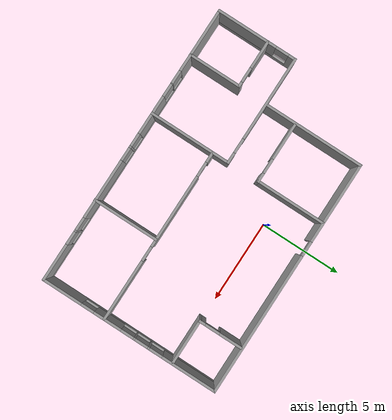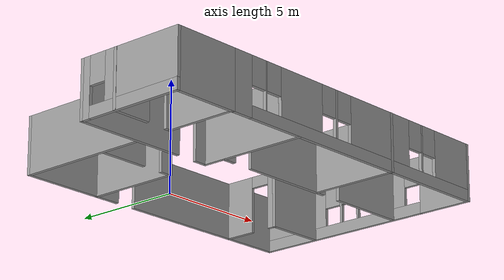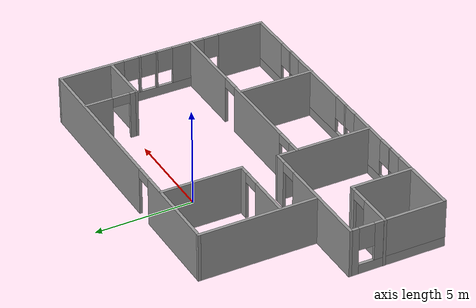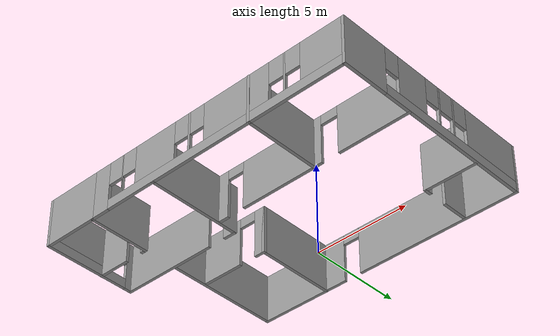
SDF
<?xml version='1.0'?>
<sdf version='1.7'>
  <model name='Room'>
    <pose>0.319548 -2.97161 0 0 -0 0</pose>
    <link name='Wall_11'>
      <collision name='Wall_11_Collision'>
        <geometry>
          <box>
            <size>5 0.15 2.5</size>
          </box>
        </geometry>
        <pose>0 0 1.25 0 -0 0</pose>
      </collision>
      <visual name='Wall_11_Visual'>
        <pose>0 0 1.25 0 -0 0</pose>
        <geometry>
          <box>
            <size>5 0.15 2.5</size>
          </box>
        </geometry>
        <material>
          <script>
            <uri>file://media/materials/scripts/gazebo.material</uri>
            <name>Gazebo/Grey</name>
          </script>
          <ambient>1 1 1 1</ambient>
        </material>
        <meta>
          <layer>0</layer>
        </meta>
      </visual>
      <pose>-1.99184 -3.00871 0 0 -0 -1.5708</pose>
    </link>
    <link name='Wall_13'>
      <pose>-3.82836 1.32044 0 0 -0 -3.14159</pose>
      <visual name='Wall_13_Visual_0'>
        <pose>-1.56629 0 1.25 0 -0 0</pose>
        <geometry>
          <box>
            <size>0.594484 0.15 2.5</size>
          </box>
        </geometry>
        <material>
          <script>
            <uri>file://media/materials/scripts/gazebo.material</uri>
            <name>Gazebo/Grey</name>
          </script>
          <ambient>1 1 1 1</ambient>
        </material>
        <meta>
          <layer>0</layer>
        </meta>
      </visual>
      <collision name='Wall_13_Collision_0'>
        <geometry>
          <box>
            <size>0.594484 0.15 2.5</size>
          </box>
        </geometry>
        <pose>-1.56629 0 1.25 0 -0 0</pose>
      </collision>
      <visual name='Wall_13_Visual_1'>
        <pose>0.747242 0 1.25 0 -0 0</pose>
        <geometry>
          <box>
            <size>2.23259 0.15 2.5</size>
          </box>
        </geometry>
        <material>
          <script>
            <uri>file://media/materials/scripts/gazebo.material</uri>
            <name>Gazebo/Grey</name>
          </script>
          <ambient>1 1 1 1</ambient>
        </material>
        <meta>
          <layer>0</layer>
        </meta>
      </visual>
      <collision name='Wall_13_Collision_1'>
        <geometry>
          <box>
            <size>2.23259 0.15 2.5</size>
          </box>
        </geometry>
        <pose>0.747242 0 1.25 0 -0 0</pose>
      </collision>
      <visual name='Wall_13_Visual_2'>
        <pose>-0.819053 0 2.25 0 -0 0</pose>
        <geometry>
          <box>
            <size>0.9 0.15 0.5</size>
          </box>
        </geometry>
        <material>
          <script>
            <uri>file://media/materials/scripts/gazebo.material</uri>
            <name>Gazebo/Grey</name>
          </script>
          <ambient>1 1 1 1</ambient>
        </material>
        <meta>
          <layer>0</layer>
        </meta>
      </visual>
      <collision name='Wall_13_Collision_2'>
        <geometry>
          <box>
            <size>0.9 0.15 0.5</size>
          </box>
        </geometry>
        <pose>-0.819053 0 2.25 0 -0 0</pose>
      </collision>
    </link>
    <link name='Wall_16'>
      <pose>-8.61053 -3.01132 0 0 -0 -1.5708</pose>
      <visual name='Wall_16_Visual_0'>
        <pose>-2.2551 0 1.25 0 -0 0</pose>
        <geometry>
          <box>
            <size>0.489807 0.15 2.5</size>
          </box>
        </geometry>
        <material>
          <script>
            <uri>file://media/materials/scripts/gazebo.material</uri>
            <name>Gazebo/Grey</name>
          </script>
          <ambient>1 1 1 1</ambient>
        </material>
        <meta>
          <layer>0</layer>
        </meta>
      </visual>
      <collision name='Wall_16_Collision_0'>
        <geometry>
          <box>
            <size>0.489807 0.15 2.5</size>
          </box>
        </geometry>
        <pose>-2.2551 0 1.25 0 -0 0</pose>
      </collision>
      <visual name='Wall_16_Visual_1'>
        <pose>0.244904 0 0.25 0 -0 0</pose>
        <geometry>
          <box>
            <size>4.51019 0.15 0.5</size>
          </box>
        </geometry>
        <material>
          <script>
            <uri>file://media/materials/scripts/gazebo.material</uri>
            <name>Gazebo/Grey</name>
          </script>
          <ambient>1 1 1 1</ambient>
        </material>
        <meta>
          <layer>0</layer>
        </meta>
      </visual>
      <collision name='Wall_16_Collision_1'>
        <geometry>
          <box>
            <size>4.51019 0.15 0.5</size>
          </box>
        </geometry>
        <pose>0.244904 0 0.25 0 -0 0</pose>
      </collision>
      <visual name='Wall_16_Visual_2'>
        <pose>0.644904 0 1.5 0 -0 0</pose>
        <geometry>
          <box>
            <size>3.71019 0.15 2</size>
          </box>
        </geometry>
        <material>
          <script>
            <uri>file://media/materials/scripts/gazebo.material</uri>
            <name>Gazebo/Grey</name>
          </script>
          <ambient>1 1 1 1</ambient>
        </material>
        <meta>
          <layer>0</layer>
        </meta>
      </visual>
      <collision name='Wall_16_Collision_2'>
        <geometry>
          <box>
            <size>3.71019 0.15 2</size>
          </box>
        </geometry>
        <pose>0.644904 0 1.5 0 -0 0</pose>
      </collision>
      <visual name='Wall_16_Visual_3'>
        <pose>-1.61019 0 1.9 0 -0 0</pose>
        <geometry>
          <box>
            <size>0.8 0.15 1.2</size>
          </box>
        </geometry>
        <material>
          <script>
            <uri>file://media/materials/scripts/gazebo.material</uri>
            <name>Gazebo/Grey</name>
          </script>
          <ambient>1 1 1 1</ambient>
        </material>
        <meta>
          <layer>0</layer>
        </meta>
      </visual>
      <collision name='Wall_16_Collision_3'>
        <geometry>
          <box>
            <size>0.8 0.15 1.2</size>
          </box>
        </geometry>
        <pose>-1.61019 0 1.9 0 -0 0</pose>
      </collision>
    </link>
    <link name='Wall_19'>
      <collision name='Wall_19_Collision'>
        <geometry>
          <box>
            <size>3 0.15 2.5</size>
          </box>
        </geometry>
        <pose>0 0 1.25 0 -0 0</pose>
      </collision>
      <visual name='Wall_19_Visual'>
        <pose>0 0 1.25 0 -0 0</pose>
        <geometry>
          <box>
            <size>3 0.15 2.5</size>
          </box>
        </geometry>
        <material>
          <script>
            <uri>file://media/materials/scripts/gazebo.material</uri>
            <name>Gazebo/Grey</name>
          </script>
          <ambient>1 1 1 1</ambient>
        </material>
        <meta>
          <layer>0</layer>
        </meta>
      </visual>
      <pose>-7.15341 -5.43584 0 0 -0 3.14159</pose>
    </link>
    <link name='Wall_2'>
      <pose>1.44511 -5.43584 0 0 -0 0</pose>
      <visual name='Wall_2_Visual_0'>
        <pose>-6.71537 0 1.25 0 -0 0</pose>
        <geometry>
          <box>
            <size>1.0663 0.15 2.5</size>
          </box>
        </geometry>
        <material>
          <script>
            <uri>file://media/materials/scripts/gazebo.material</uri>
            <name>Gazebo/Grey</name>
          </script>
          <ambient>1 1 1 1</ambient>
        </material>
        <meta>
          <layer>0</layer>
        </meta>
      </visual>
      <collision name='Wall_2_Collision_0'>
        <geometry>
          <box>
            <size>1.0663 0.15 2.5</size>
          </box>
        </geometry>
        <pose>-6.71537 0 1.25 0 -0 0</pose>
      </collision>
      <visual name='Wall_2_Visual_1'>
        <pose>0.53315 0 0.25 0 -0 0</pose>
        <geometry>
          <box>
            <size>13.4307 0.15 0.5</size>
          </box>
        </geometry>
        <material>
          <script>
            <uri>file://media/materials/scripts/gazebo.material</uri>
            <name>Gazebo/Grey</name>
          </script>
          <ambient>1 1 1 1</ambient>
        </material>
        <meta>
          <layer>0</layer>
        </meta>
      </visual>
      <collision name='Wall_2_Collision_1'>
        <geometry>
          <box>
            <size>13.4307 0.15 0.5</size>
          </box>
        </geometry>
        <pose>0.53315 0 0.25 0 -0 0</pose>
      </collision>
      <visual name='Wall_2_Visual_2'>
        <pose>-5.35754 0 1.5 0 -0 0</pose>
        <geometry>
          <box>
            <size>0.049355 0.15 2</size>
          </box>
        </geometry>
        <material>
          <script>
            <uri>file://media/materials/scripts/gazebo.material</uri>
            <name>Gazebo/Grey</name>
          </script>
          <ambient>1 1 1 1</ambient>
        </material>
        <meta>
          <layer>0</layer>
        </meta>
      </visual>
      <collision name='Wall_2_Collision_2'>
        <geometry>
          <box>
            <size>0.049355 0.15 2</size>
          </box>
        </geometry>
        <pose>-5.35754 0 1.5 0 -0 0</pose>
      </collision>
      <visual name='Wall_2_Visual_3'>
        <pose>-3.34008 0 1.5 0 -0 0</pose>
        <geometry>
          <box>
            <size>2.38558 0.15 2</size>
          </box>
        </geometry>
        <material>
          <script>
            <uri>file://media/materials/scripts/gazebo.material</uri>
            <name>Gazebo/Grey</name>
          </script>
          <ambient>1 1 1 1</ambient>
        </material>
        <meta>
          <layer>0</layer>
        </meta>
      </visual>
      <collision name='Wall_2_Collision_3'>
        <geometry>
          <box>
            <size>2.38558 0.15 2</size>
          </box>
        </geometry>
        <pose>-3.34008 0 1.5 0 -0 0</pose>
      </collision>
      <visual name='Wall_2_Visual_4'>
        <pose>-1.28728 0 1.5 0 -0 0</pose>
        <geometry>
          <box>
            <size>0.12 0.15 2</size>
          </box>
        </geometry>
        <material>
          <script>
            <uri>file://media/materials/scripts/gazebo.material</uri>
            <name>Gazebo/Grey</name>
          </script>
          <ambient>1 1 1 1</ambient>
        </material>
        <meta>
          <layer>0</layer>
        </meta>
      </visual>
      <collision name='Wall_2_Collision_4'>
        <geometry>
          <box>
            <size>0.12 0.15 2</size>
          </box>
        </geometry>
        <pose>-1.28728 0 1.5 0 -0 0</pose>
      </collision>
      <visual name='Wall_2_Visual_5'>
        <pose>1.40372 0 1.5 0 -0 0</pose>
        <geometry>
          <box>
            <size>3.662 0.15 2</size>
          </box>
        </geometry>
        <material>
          <script>
            <uri>file://media/materials/scripts/gazebo.material</uri>
            <name>Gazebo/Grey</name>
          </script>
          <ambient>1 1 1 1</ambient>
        </material>
        <meta>
          <layer>0</layer>
        </meta>
      </visual>
      <collision name='Wall_2_Collision_5'>
        <geometry>
          <box>
            <size>3.662 0.15 2</size>
          </box>
        </geometry>
        <pose>1.40372 0 1.5 0 -0 0</pose>
      </collision>
      <visual name='Wall_2_Visual_6'>
        <pose>4.08322 0 1.5 0 -0 0</pose>
        <geometry>
          <box>
            <size>0.097 0.15 2</size>
          </box>
        </geometry>
        <material>
          <script>
            <uri>file://media/materials/scripts/gazebo.material</uri>
            <name>Gazebo/Grey</name>
          </script>
          <ambient>1 1 1 1</ambient>
        </material>
        <meta>
          <layer>0</layer>
        </meta>
      </visual>
      <collision name='Wall_2_Collision_6'>
        <geometry>
          <box>
            <size>0.097 0.15 2</size>
          </box>
        </geometry>
        <pose>4.08322 0 1.5 0 -0 0</pose>
      </collision>
      <visual name='Wall_2_Visual_7'>
        <pose>6.09012 0 1.5 0 -0 0</pose>
        <geometry>
          <box>
            <size>2.31681 0.15 2</size>
          </box>
        </geometry>
        <material>
          <script>
            <uri>file://media/materials/scripts/gazebo.material</uri>
            <name>Gazebo/Grey</name>
          </script>
          <ambient>1 1 1 1</ambient>
        </material>
        <meta>
          <layer>0</layer>
        </meta>
      </visual>
      <collision name='Wall_2_Collision_7'>
        <geometry>
          <box>
            <size>2.31681 0.15 2</size>
          </box>
        </geometry>
        <pose>6.09012 0 1.5 0 -0 0</pose>
      </collision>
      <visual name='Wall_2_Visual_8'>
        <pose>-5.78222 0 1.9 0 -0 0</pose>
        <geometry>
          <box>
            <size>0.8 0.15 1.2</size>
          </box>
        </geometry>
        <material>
          <script>
            <uri>file://media/materials/scripts/gazebo.material</uri>
            <name>Gazebo/Grey</name>
          </script>
          <ambient>1 1 1 1</ambient>
        </material>
        <meta>
          <layer>0</layer>
        </meta>
      </visual>
      <collision name='Wall_2_Collision_8'>
        <geometry>
          <box>
            <size>0.8 0.15 1.2</size>
          </box>
        </geometry>
        <pose>-5.78222 0 1.9 0 -0 0</pose>
      </collision>
      <visual name='Wall_2_Visual_9'>
        <pose>-4.93286 0 1.9 0 -0 0</pose>
        <geometry>
          <box>
            <size>0.8 0.15 1.2</size>
          </box>
        </geometry>
        <material>
          <script>
            <uri>file://media/materials/scripts/gazebo.material</uri>
            <name>Gazebo/Grey</name>
          </script>
          <ambient>1 1 1 1</ambient>
        </material>
        <meta>
          <layer>0</layer>
        </meta>
      </visual>
      <collision name='Wall_2_Collision_9'>
        <geometry>
          <box>
            <size>0.8 0.15 1.2</size>
          </box>
        </geometry>
        <pose>-4.93286 0 1.9 0 -0 0</pose>
      </collision>
      <visual name='Wall_2_Visual_10'>
        <pose>-1.74728 0 1.9 0 -0 0</pose>
        <geometry>
          <box>
            <size>0.8 0.15 1.2</size>
          </box>
        </geometry>
        <material>
          <script>
            <uri>file://media/materials/scripts/gazebo.material</uri>
            <name>Gazebo/Grey</name>
          </script>
          <ambient>1 1 1 1</ambient>
        </material>
        <meta>
          <layer>0</layer>
        </meta>
      </visual>
      <collision name='Wall_2_Collision_10'>
        <geometry>
          <box>
            <size>0.8 0.15 1.2</size>
          </box>
        </geometry>
        <pose>-1.74728 0 1.9 0 -0 0</pose>
      </collision>
      <visual name='Wall_2_Visual_11'>
        <pose>-0.827284 0 1.9 0 -0 0</pose>
        <geometry>
          <box>
            <size>0.8 0.15 1.2</size>
          </box>
        </geometry>
        <material>
          <script>
            <uri>file://media/materials/scripts/gazebo.material</uri>
            <name>Gazebo/Grey</name>
          </script>
          <ambient>1 1 1 1</ambient>
        </material>
        <meta>
          <layer>0</layer>
        </meta>
      </visual>
      <collision name='Wall_2_Collision_11'>
        <geometry>
          <box>
            <size>0.8 0.15 1.2</size>
          </box>
        </geometry>
        <pose>-0.827284 0 1.9 0 -0 0</pose>
      </collision>
      <visual name='Wall_2_Visual_12'>
        <pose>3.63472 0 1.9 0 -0 0</pose>
        <geometry>
          <box>
            <size>0.8 0.15 1.2</size>
          </box>
        </geometry>
        <material>
          <script>
            <uri>file://media/materials/scripts/gazebo.material</uri>
            <name>Gazebo/Grey</name>
          </script>
          <ambient>1 1 1 1</ambient>
        </material>
        <meta>
          <layer>0</layer>
        </meta>
      </visual>
      <collision name='Wall_2_Collision_12'>
        <geometry>
          <box>
            <size>0.8 0.15 1.2</size>
          </box>
        </geometry>
        <pose>3.63472 0 1.9 0 -0 0</pose>
      </collision>
      <visual name='Wall_2_Visual_13'>
        <pose>4.53172 0 1.9 0 -0 0</pose>
        <geometry>
          <box>
            <size>0.8 0.15 1.2</size>
          </box>
        </geometry>
        <material>
          <script>
            <uri>file://media/materials/scripts/gazebo.material</uri>
            <name>Gazebo/Grey</name>
          </script>
          <ambient>1 1 1 1</ambient>
        </material>
        <meta>
          <layer>0</layer>
        </meta>
      </visual>
      <collision name='Wall_2_Collision_13'>
        <geometry>
          <box>
            <size>0.8 0.15 1.2</size>
          </box>
        </geometry>
        <pose>4.53172 0 1.9 0 -0 0</pose>
      </collision>
    </link>
    <link name='Wall_22'>
      <pose>-5.31053 -0.586315 0 0 -0 0</pose>
      <visual name='Wall_22_Visual_0'>
        <pose>-0.787931 0 1.25 0 -0 0</pose>
        <geometry>
          <box>
            <size>5.17414 0.15 2.5</size>
          </box>
        </geometry>
        <material>
          <script>
            <uri>file://media/materials/scripts/gazebo.material</uri>
            <name>Gazebo/Grey</name>
          </script>
          <ambient>1 1 1 1</ambient>
        </material>
        <meta>
          <layer>0</layer>
        </meta>
      </visual>
      <collision name='Wall_22_Collision_0'>
        <geometry>
          <box>
            <size>5.17414 0.15 2.5</size>
          </box>
        </geometry>
        <pose>-0.787931 0 1.25 0 -0 0</pose>
      </collision>
      <visual name='Wall_22_Visual_1'>
        <pose>3.03707 0 1.25 0 -0 0</pose>
        <geometry>
          <box>
            <size>0.675863 0.15 2.5</size>
          </box>
        </geometry>
        <material>
          <script>
            <uri>file://media/materials/scripts/gazebo.material</uri>
            <name>Gazebo/Grey</name>
          </script>
          <ambient>1 1 1 1</ambient>
        </material>
        <meta>
          <layer>0</layer>
        </meta>
      </visual>
      <collision name='Wall_22_Collision_1'>
        <geometry>
          <box>
            <size>0.675863 0.15 2.5</size>
          </box>
        </geometry>
        <pose>3.03707 0 1.25 0 -0 0</pose>
      </collision>
      <visual name='Wall_22_Visual_2'>
        <pose>2.24914 0 2.25 0 -0 0</pose>
        <geometry>
          <box>
            <size>0.9 0.15 0.5</size>
          </box>
        </geometry>
        <material>
          <script>
            <uri>file://media/materials/scripts/gazebo.material</uri>
            <name>Gazebo/Grey</name>
          </script>
          <ambient>1 1 1 1</ambient>
        </material>
        <meta>
          <layer>0</layer>
        </meta>
      </visual>
      <collision name='Wall_22_Collision_2'>
        <geometry>
          <box>
            <size>0.9 0.15 0.5</size>
          </box>
        </geometry>
        <pose>2.24914 0 2.25 0 -0 0</pose>
      </collision>
    </link>
    <link name='Wall_26'>
      <collision name='Wall_26_Collision'>
        <geometry>
          <box>
            <size>6.03591 0.15 2.5</size>
          </box>
        </geometry>
        <pose>0 0 1.25 0 -0 0</pose>
      </collision>
      <visual name='Wall_26_Visual'>
        <pose>0 0 1.25 0 -0 0</pose>
        <geometry>
          <box>
            <size>6.03591 0.15 2.5</size>
          </box>
        </geometry>
        <material>
          <script>
            <uri>file://media/materials/scripts/gazebo.material</uri>
            <name>Gazebo/Grey</name>
          </script>
          <ambient>1 1 1 1</ambient>
        </material>
        <meta>
          <layer>0</layer>
        </meta>
      </visual>
      <pose>-5.73137 2.50709 0 0 -0 -1.5708</pose>
    </link>
    <link name='Wall_28'>
      <pose>3.31307 -1.56727 0 0 -0 0</pose>
      <visual name='Wall_28_Visual_0'>
        <pose>-5.02986 0 1.25 0 -0 0</pose>
        <geometry>
          <box>
            <size>0.690281 0.15 2.5</size>
          </box>
        </geometry>
        <material>
          <script>
            <uri>file://media/materials/scripts/gazebo.material</uri>
            <name>Gazebo/Grey</name>
          </script>
          <ambient>1 1 1 1</ambient>
        </material>
        <meta>
          <layer>0</layer>
        </meta>
      </visual>
      <collision name='Wall_28_Collision_0'>
        <geometry>
          <box>
            <size>0.690281 0.15 2.5</size>
          </box>
        </geometry>
        <pose>-5.02986 0 1.25 0 -0 0</pose>
      </collision>
      <visual name='Wall_28_Visual_1'>
        <pose>-1.5395 0 1.25 0 -0 0</pose>
        <geometry>
          <box>
            <size>4.49044 0.15 2.5</size>
          </box>
        </geometry>
        <material>
          <script>
            <uri>file://media/materials/scripts/gazebo.material</uri>
            <name>Gazebo/Grey</name>
          </script>
          <ambient>1 1 1 1</ambient>
        </material>
        <meta>
          <layer>0</layer>
        </meta>
      </visual>
      <collision name='Wall_28_Collision_1'>
        <geometry>
          <box>
            <size>4.49044 0.15 2.5</size>
          </box>
        </geometry>
        <pose>-1.5395 0 1.25 0 -0 0</pose>
      </collision>
      <visual name='Wall_28_Visual_2'>
        <pose>3.49036 0 1.25 0 -0 0</pose>
        <geometry>
          <box>
            <size>3.76928 0.15 2.5</size>
          </box>
        </geometry>
        <material>
          <script>
            <uri>file://media/materials/scripts/gazebo.material</uri>
            <name>Gazebo/Grey</name>
          </script>
          <ambient>1 1 1 1</ambient>
        </material>
        <meta>
          <layer>0</layer>
        </meta>
      </visual>
      <collision name='Wall_28_Collision_2'>
        <geometry>
          <box>
            <size>3.76928 0.15 2.5</size>
          </box>
        </geometry>
        <pose>3.49036 0 1.25 0 -0 0</pose>
      </collision>
      <visual name='Wall_28_Visual_3'>
        <pose>-4.23472 0 2.25 0 -0 0</pose>
        <geometry>
          <box>
            <size>0.9 0.15 0.5</size>
          </box>
        </geometry>
        <material>
          <script>
            <uri>file://media/materials/scripts/gazebo.material</uri>
            <name>Gazebo/Grey</name>
          </script>
          <ambient>1 1 1 1</ambient>
        </material>
        <meta>
          <layer>0</layer>
        </meta>
      </visual>
      <collision name='Wall_28_Collision_3'>
        <geometry>
          <box>
            <size>0.9 0.15 0.5</size>
          </box>
        </geometry>
        <pose>-4.23472 0 2.25 0 -0 0</pose>
      </collision>
      <visual name='Wall_28_Visual_4'>
        <pose>1.15572 0 2.25 0 -0 0</pose>
        <geometry>
          <box>
            <size>0.9 0.15 0.5</size>
          </box>
        </geometry>
        <material>
          <script>
            <uri>file://media/materials/scripts/gazebo.material</uri>
            <name>Gazebo/Grey</name>
          </script>
          <ambient>1 1 1 1</ambient>
        </material>
        <meta>
          <layer>0</layer>
        </meta>
      </visual>
      <collision name='Wall_28_Collision_4'>
        <geometry>
          <box>
            <size>0.9 0.15 0.5</size>
          </box>
        </geometry>
        <pose>1.15572 0 2.25 0 -0 0</pose>
      </collision>
    </link>
    <link name='Wall_3'>
      <pose>8.61863 0.007088 0 0 -0 1.5708</pose>
      <visual name='Wall_3_Visual_0'>
        <pose>-4.28407 0 1.25 0 -0 0</pose>
        <geometry>
          <box>
            <size>2.46773 0.15 2.5</size>
          </box>
        </geometry>
        <material>
          <script>
            <uri>file://media/materials/scripts/gazebo.material</uri>
            <name>Gazebo/Grey</name>
          </script>
          <ambient>1 1 1 1</ambient>
        </material>
        <meta>
          <layer>0</layer>
        </meta>
      </visual>
      <collision name='Wall_3_Collision_0'>
        <geometry>
          <box>
            <size>2.46773 0.15 2.5</size>
          </box>
        </geometry>
        <pose>-4.28407 0 1.25 0 -0 0</pose>
      </collision>
      <visual name='Wall_3_Visual_1'>
        <pose>1.23387 0 0.25 0 -0 0</pose>
        <geometry>
          <box>
            <size>8.56815 0.15 0.5</size>
          </box>
        </geometry>
        <material>
          <script>
            <uri>file://media/materials/scripts/gazebo.material</uri>
            <name>Gazebo/Grey</name>
          </script>
          <ambient>1 1 1 1</ambient>
        </material>
        <meta>
          <layer>0</layer>
        </meta>
      </visual>
      <collision name='Wall_3_Collision_1'>
        <geometry>
          <box>
            <size>8.56815 0.15 0.5</size>
          </box>
        </geometry>
        <pose>1.23387 0 0.25 0 -0 0</pose>
      </collision>
      <visual name='Wall_3_Visual_2'>
        <pose>-1.38133 0 1.5 0 -0 0</pose>
        <geometry>
          <box>
            <size>1.73776 0.15 2</size>
          </box>
        </geometry>
        <material>
          <script>
            <uri>file://media/materials/scripts/gazebo.material</uri>
            <name>Gazebo/Grey</name>
          </script>
          <ambient>1 1 1 1</ambient>
        </material>
        <meta>
          <layer>0</layer>
        </meta>
      </visual>
      <collision name='Wall_3_Collision_2'>
        <geometry>
          <box>
            <size>1.73776 0.15 2</size>
          </box>
        </geometry>
        <pose>-1.38133 0 1.5 0 -0 0</pose>
      </collision>
      <visual name='Wall_3_Visual_3'>
        <pose>0.337921 0 1.5 0 -0 0</pose>
        <geometry>
          <box>
            <size>0.100747 0.15 2</size>
          </box>
        </geometry>
        <material>
          <script>
            <uri>file://media/materials/scripts/gazebo.material</uri>
            <name>Gazebo/Grey</name>
          </script>
          <ambient>1 1 1 1</ambient>
        </material>
        <meta>
          <layer>0</layer>
        </meta>
      </visual>
      <collision name='Wall_3_Collision_3'>
        <geometry>
          <box>
            <size>0.100747 0.15 2</size>
          </box>
        </geometry>
        <pose>0.337921 0 1.5 0 -0 0</pose>
      </collision>
      <visual name='Wall_3_Visual_4'>
        <pose>1.24456 0 1.5 0 -0 0</pose>
        <geometry>
          <box>
            <size>0.112525 0.15 2</size>
          </box>
        </geometry>
        <material>
          <script>
            <uri>file://media/materials/scripts/gazebo.material</uri>
            <name>Gazebo/Grey</name>
          </script>
          <ambient>1 1 1 1</ambient>
        </material>
        <meta>
          <layer>0</layer>
        </meta>
      </visual>
      <collision name='Wall_3_Collision_4'>
        <geometry>
          <box>
            <size>0.112525 0.15 2</size>
          </box>
        </geometry>
        <pose>1.24456 0 1.5 0 -0 0</pose>
      </collision>
      <visual name='Wall_3_Visual_5'>
        <pose>3.80938 0 1.5 0 -0 0</pose>
        <geometry>
          <box>
            <size>3.41712 0.15 2</size>
          </box>
        </geometry>
        <material>
          <script>
            <uri>file://media/materials/scripts/gazebo.material</uri>
            <name>Gazebo/Grey</name>
          </script>
          <ambient>1 1 1 1</ambient>
        </material>
        <meta>
          <layer>0</layer>
        </meta>
      </visual>
      <collision name='Wall_3_Collision_5'>
        <geometry>
          <box>
            <size>3.41712 0.15 2</size>
          </box>
        </geometry>
        <pose>3.80938 0 1.5 0 -0 0</pose>
      </collision>
      <visual name='Wall_3_Visual_6'>
        <pose>-2.65021 0 1.9 0 -0 0</pose>
        <geometry>
          <box>
            <size>0.8 0.15 1.2</size>
          </box>
        </geometry>
        <material>
          <script>
            <uri>file://media/materials/scripts/gazebo.material</uri>
            <name>Gazebo/Grey</name>
          </script>
          <ambient>1 1 1 1</ambient>
        </material>
        <meta>
          <layer>0</layer>
        </meta>
      </visual>
      <collision name='Wall_3_Collision_6'>
        <geometry>
          <box>
            <size>0.8 0.15 1.2</size>
          </box>
        </geometry>
        <pose>-2.65021 0 1.9 0 -0 0</pose>
      </collision>
      <visual name='Wall_3_Visual_7'>
        <pose>-0.112453 0 1.9 0 -0 0</pose>
        <geometry>
          <box>
            <size>0.8 0.15 1.2</size>
          </box>
        </geometry>
        <material>
          <script>
            <uri>file://media/materials/scripts/gazebo.material</uri>
            <name>Gazebo/Grey</name>
          </script>
          <ambient>1 1 1 1</ambient>
        </material>
        <meta>
          <layer>0</layer>
        </meta>
      </visual>
      <collision name='Wall_3_Collision_7'>
        <geometry>
          <box>
            <size>0.8 0.15 1.2</size>
          </box>
        </geometry>
        <pose>-0.112453 0 1.9 0 -0 0</pose>
      </collision>
      <visual name='Wall_3_Visual_8'>
        <pose>0.788294 0 1.9 0 -0 0</pose>
        <geometry>
          <box>
            <size>0.8 0.15 1.2</size>
          </box>
        </geometry>
        <material>
          <script>
            <uri>file://media/materials/scripts/gazebo.material</uri>
            <name>Gazebo/Grey</name>
          </script>
          <ambient>1 1 1 1</ambient>
        </material>
        <meta>
          <layer>0</layer>
        </meta>
      </visual>
      <collision name='Wall_3_Collision_8'>
        <geometry>
          <box>
            <size>0.8 0.15 1.2</size>
          </box>
        </geometry>
        <pose>0.788294 0 1.9 0 -0 0</pose>
      </collision>
      <visual name='Wall_3_Visual_9'>
        <pose>1.70082 0 1.9 0 -0 0</pose>
        <geometry>
          <box>
            <size>0.8 0.15 1.2</size>
          </box>
        </geometry>
        <material>
          <script>
            <uri>file://media/materials/scripts/gazebo.material</uri>
            <name>Gazebo/Grey</name>
          </script>
          <ambient>1 1 1 1</ambient>
        </material>
        <meta>
          <layer>0</layer>
        </meta>
      </visual>
      <collision name='Wall_3_Collision_9'>
        <geometry>
          <box>
            <size>0.8 0.15 1.2</size>
          </box>
        </geometry>
        <pose>1.70082 0 1.9 0 -0 0</pose>
      </collision>
    </link>
    <link name='Wall_31'>
      <collision name='Wall_31_Collision'>
        <geometry>
          <box>
            <size>4 0.15 2.5</size>
          </box>
        </geometry>
        <pose>0 0 1.25 0 -0 0</pose>
      </collision>
      <visual name='Wall_31_Visual'>
        <pose>0 0 1.25 0 -0 0</pose>
        <geometry>
          <box>
            <size>4 0.15 2.5</size>
          </box>
        </geometry>
        <material>
          <script>
            <uri>file://media/materials/scripts/gazebo.material</uri>
            <name>Gazebo/Grey</name>
          </script>
          <ambient>1 1 1 1</ambient>
        </material>
        <meta>
          <layer>0</layer>
        </meta>
      </visual>
      <pose>3.56046 -3.52504 0 0 -0 -1.5708</pose>
    </link>
    <link name='Wall_37'>
      <pose>-7.19363 -2.32774 0 0 -0 0</pose>
      <visual name='Wall_37_Visual_0'>
        <pose>-0.622378 0 1.25 0 -0 0</pose>
        <geometry>
          <box>
            <size>1.75524 0.15 2.5</size>
          </box>
        </geometry>
        <material>
          <script>
            <uri>file://media/materials/scripts/gazebo.material</uri>
            <name>Gazebo/Grey</name>
          </script>
          <ambient>1 1 1 1</ambient>
        </material>
        <meta>
          <layer>0</layer>
        </meta>
      </visual>
      <collision name='Wall_37_Collision_0'>
        <geometry>
          <box>
            <size>1.75524 0.15 2.5</size>
          </box>
        </geometry>
        <pose>-0.622378 0 1.25 0 -0 0</pose>
      </collision>
      <visual name='Wall_37_Visual_1'>
        <pose>1.32762 0 1.25 0 -0 0</pose>
        <geometry>
          <box>
            <size>0.344757 0.15 2.5</size>
          </box>
        </geometry>
        <material>
          <script>
            <uri>file://media/materials/scripts/gazebo.material</uri>
            <name>Gazebo/Grey</name>
          </script>
          <ambient>1 1 1 1</ambient>
        </material>
        <meta>
          <layer>0</layer>
        </meta>
      </visual>
      <collision name='Wall_37_Collision_1'>
        <geometry>
          <box>
            <size>0.344757 0.15 2.5</size>
          </box>
        </geometry>
        <pose>1.32762 0 1.25 0 -0 0</pose>
      </collision>
      <visual name='Wall_37_Visual_2'>
        <pose>0.705243 0 2.25 0 -0 0</pose>
        <geometry>
          <box>
            <size>0.9 0.15 0.5</size>
          </box>
        </geometry>
        <material>
          <script>
            <uri>file://media/materials/scripts/gazebo.material</uri>
            <name>Gazebo/Grey</name>
          </script>
          <ambient>1 1 1 1</ambient>
        </material>
        <meta>
          <layer>0</layer>
        </meta>
      </visual>
      <collision name='Wall_37_Collision_2'>
        <geometry>
          <box>
            <size>0.9 0.15 0.5</size>
          </box>
        </geometry>
        <pose>0.705243 0 2.25 0 -0 0</pose>
      </collision>
    </link>
    <link name='Wall_38'>
      <collision name='Wall_38_Collision'>
        <geometry>
          <box>
            <size>3.25 0.15 2.5</size>
          </box>
        </geometry>
        <pose>0 0 1.25 0 -0 0</pose>
      </collision>
      <visual name='Wall_38_Visual'>
        <pose>0 0 1.25 0 -0 0</pose>
        <geometry>
          <box>
            <size>3.25 0.15 2.5</size>
          </box>
        </geometry>
        <material>
          <script>
            <uri>file://media/materials/scripts/gazebo.material</uri>
            <name>Gazebo/Grey</name>
          </script>
          <ambient>1 1 1 1</ambient>
        </material>
        <meta>
          <layer>0</layer>
        </meta>
      </visual>
      <pose>-5.76863 -3.87774 0 0 -0 -1.5708</pose>
    </link>
    <link name='Wall_4'>
      <pose>1.44363 5.45001 0 0 -0 3.14159</pose>
      <visual name='Wall_4_Visual_0'>
        <pose>-2.92422 0 1.25 0 -0 0</pose>
        <geometry>
          <box>
            <size>8.65155 0.15 2.5</size>
          </box>
        </geometry>
        <material>
          <script>
            <uri>file://media/materials/scripts/gazebo.material</uri>
            <name>Gazebo/Grey</name>
          </script>
          <ambient>1 1 1 1</ambient>
        </material>
        <meta>
          <layer>0</layer>
        </meta>
      </visual>
      <collision name='Wall_4_Collision_0'>
        <geometry>
          <box>
            <size>8.65155 0.15 2.5</size>
          </box>
        </geometry>
        <pose>-2.92422 0 1.25 0 -0 0</pose>
      </collision>
      <visual name='Wall_4_Visual_1'>
        <pose>4.77578 0 1.25 0 -0 0</pose>
        <geometry>
          <box>
            <size>4.94845 0.15 2.5</size>
          </box>
        </geometry>
        <material>
          <script>
            <uri>file://media/materials/scripts/gazebo.material</uri>
            <name>Gazebo/Grey</name>
          </script>
          <ambient>1 1 1 1</ambient>
        </material>
        <meta>
          <layer>0</layer>
        </meta>
      </visual>
      <collision name='Wall_4_Collision_1'>
        <geometry>
          <box>
            <size>4.94845 0.15 2.5</size>
          </box>
        </geometry>
        <pose>4.77578 0 1.25 0 -0 0</pose>
      </collision>
      <visual name='Wall_4_Visual_2'>
        <pose>1.85155 0 2.25 0 -0 0</pose>
        <geometry>
          <box>
            <size>0.9 0.15 0.5</size>
          </box>
        </geometry>
        <material>
          <script>
            <uri>file://media/materials/scripts/gazebo.material</uri>
            <name>Gazebo/Grey</name>
          </script>
          <ambient>1 1 1 1</ambient>
        </material>
        <meta>
          <layer>0</layer>
        </meta>
      </visual>
      <collision name='Wall_4_Collision_2'>
        <geometry>
          <box>
            <size>0.9 0.15 0.5</size>
          </box>
        </geometry>
        <pose>1.85155 0 2.25 0 -0 0</pose>
      </collision>
    </link>
    <link name='Wall_42'>
      <collision name='Wall_42_Collision'>
        <geometry>
          <box>
            <size>4.25 0.15 2.5</size>
          </box>
        </geometry>
        <pose>0 0 1.25 0 -0 0</pose>
      </collision>
      <visual name='Wall_42_Visual'>
        <pose>0 0 1.25 0 -0 0</pose>
        <geometry>
          <box>
            <size>4.25 0.15 2.5</size>
          </box>
        </geometry>
        <material>
          <script>
            <uri>file://media/materials/scripts/gazebo.material</uri>
            <name>Gazebo/Grey</name>
          </script>
          <ambient>1 1 1 1</ambient>
        </material>
        <meta>
          <layer>0</layer>
        </meta>
      </visual>
      <pose>-2.03986 3.37044 0 0 -0 1.5708</pose>
    </link>
    <link name='Wall_44'>
      <collision name='Wall_44_Collision'>
        <geometry>
          <box>
            <size>2.75 0.15 2.5</size>
          </box>
        </geometry>
        <pose>0 0 1.25 0 -0 0</pose>
      </collision>
      <visual name='Wall_44_Visual'>
        <pose>0 0 1.25 0 -0 0</pose>
        <geometry>
          <box>
            <size>2.75 0.15 2.5</size>
          </box>
        </geometry>
        <material>
          <script>
            <uri>file://media/materials/scripts/gazebo.material</uri>
            <name>Gazebo/Grey</name>
          </script>
          <ambient>1 1 1 1</ambient>
        </material>
        <meta>
          <layer>0</layer>
        </meta>
      </visual>
      <pose>7.22321 2.75964 0 0 -0 3.14159</pose>
    </link>
    <link name='Wall_46'>
      <pose>5.92321 4.0681 0 0 -0 1.5708</pose>
      <visual name='Wall_46_Visual_0'>
        <pose>-1.15901 0 1.25 0 -0 0</pose>
        <geometry>
          <box>
            <size>0.40316 0.15 2.5</size>
          </box>
        </geometry>
        <material>
          <script>
            <uri>file://media/materials/scripts/gazebo.material</uri>
            <name>Gazebo/Grey</name>
          </script>
          <ambient>1 1 1 1</ambient>
        </material>
        <meta>
          <layer>0</layer>
        </meta>
      </visual>
      <collision name='Wall_46_Collision_0'>
        <geometry>
          <box>
            <size>0.40316 0.15 2.5</size>
          </box>
        </geometry>
        <pose>-1.15901 0 1.25 0 -0 0</pose>
      </collision>
      <visual name='Wall_46_Visual_1'>
        <pose>0.65158 0 1.25 0 -0 0</pose>
        <geometry>
          <box>
            <size>1.41801 0.15 2.5</size>
          </box>
        </geometry>
        <material>
          <script>
            <uri>file://media/materials/scripts/gazebo.material</uri>
            <name>Gazebo/Grey</name>
          </script>
          <ambient>1 1 1 1</ambient>
        </material>
        <meta>
          <layer>0</layer>
        </meta>
      </visual>
      <collision name='Wall_46_Collision_1'>
        <geometry>
          <box>
            <size>1.41801 0.15 2.5</size>
          </box>
        </geometry>
        <pose>0.65158 0 1.25 0 -0 0</pose>
      </collision>
      <visual name='Wall_46_Visual_2'>
        <pose>-0.507427 0 2.25 0 -0 0</pose>
        <geometry>
          <box>
            <size>0.9 0.15 0.5</size>
          </box>
        </geometry>
        <material>
          <script>
            <uri>file://media/materials/scripts/gazebo.material</uri>
            <name>Gazebo/Grey</name>
          </script>
          <ambient>1 1 1 1</ambient>
        </material>
        <meta>
          <layer>0</layer>
        </meta>
      </visual>
      <collision name='Wall_46_Collision_2'>
        <geometry>
          <box>
            <size>0.9 0.15 0.5</size>
          </box>
        </geometry>
        <pose>-0.507427 0 2.25 0 -0 0</pose>
      </collision>
    </link>
    <static>1</static>
  </model>
</sdf>
